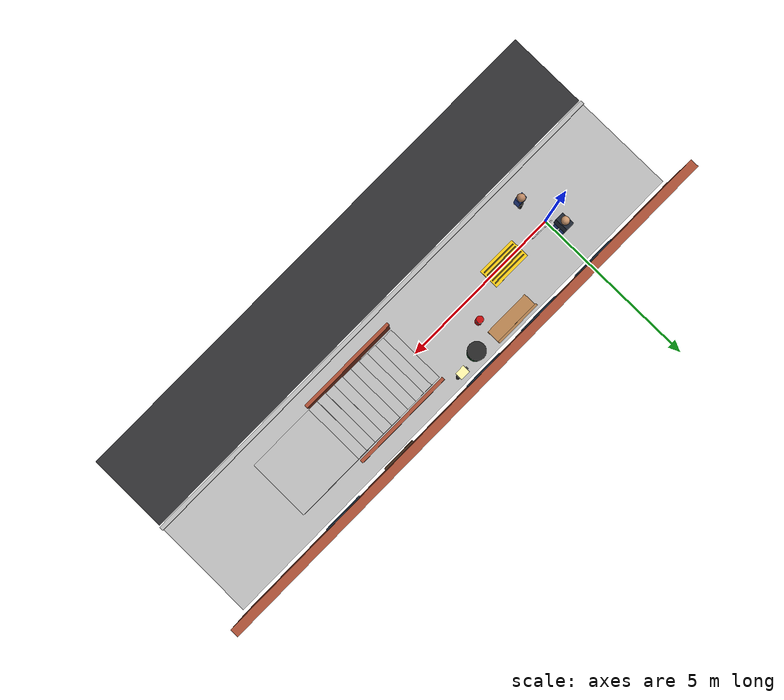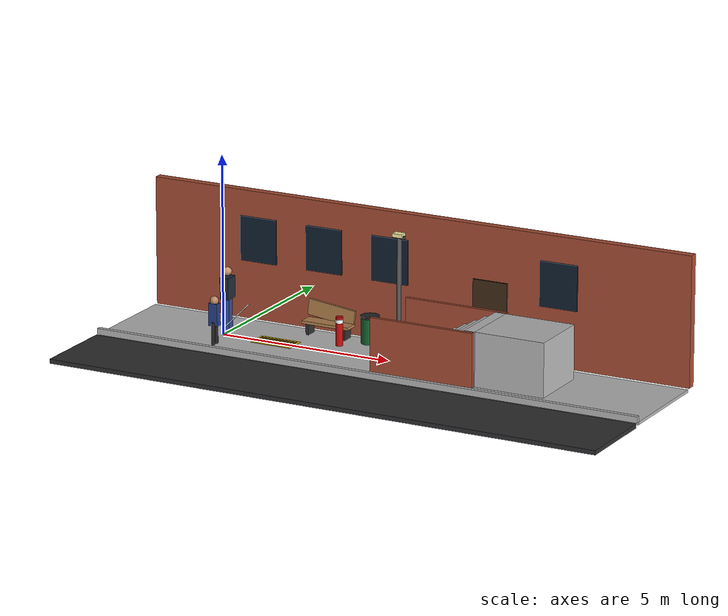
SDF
<sdf version="1.6">
 <world name="guide_dog_street_shifted">
  <scene>
   <ambient>0.20 0.19 0.18 1</ambient>
   <background>0.38 0.39 0.44 1</background>
   <shadows>true</shadows>
   <fog><color>0.38 0.39 0.44 1</color><density>0.035</density></fog>
  </scene>
  <light type="directional" name="sun">
   <pose>0 0 10 0 0 0</pose>
   <diffuse>0.62 0.55 0.42 1</diffuse>
   <specular>0.18 0.18 0.18 1</specular>
   <direction>-0.65 0.25 -0.75</direction>
  </light>
  <model name="road">
   <static>true</static>
   <pose>5 -2.85 -0.06 0 0 0</pose>
   <link name="link">
    <collision name="collision"><geometry><box><size>16 2.4 0.12</size></box></geometry></collision>
    <visual name="visual">
     <geometry><box><size>16 2.4 0.12</size></box></geometry>
     <material>
      <ambient>0.12 0.12 0.13 1</ambient>
      <diffuse>0.18 0.18 0.19 1</diffuse>
      <specular>0.05 0.05 0.05 1</specular>
     </material>
    </visual>
   </link>
  </model>
  <model name="sidewalk">
   <static>true</static>
   <pose>5 0 -0.04 0 0 0</pose>
   <link name="link">
    <collision name="collision"><geometry><box><size>16 3.0 0.08</size></box></geometry></collision>
    <visual name="visual">
     <geometry><box><size>16 3.0 0.08</size></box></geometry>
     <material>
      <script><uri>file://media/materials/scripts/gazebo.material</uri><name>Gazebo/Concrete</name></script>
     </material>
    </visual>
   </link>
  </model>
  <model name="curb">
   <static>true</static>
   <pose>5 -1.54 0.085 0 0 0</pose>
   <link name="link">
    <collision name="collision"><geometry><box><size>16 0.12 0.17</size></box></geometry></collision>
    <visual name="visual">
     <geometry><box><size>16 0.12 0.17</size></box></geometry>
     <material>
      <ambient>0.62 0.62 0.62 1</ambient>
      <diffuse>0.72 0.72 0.72 1</diffuse>
      <specular>0.15 0.15 0.15 1</specular>
     </material>
    </visual>
   </link>
  </model>
  <model name="building_wall">
   <static>true</static>
   <pose>5 1.72 1.8 0 0 0</pose>
   <link name="link">
    <collision name="collision"><geometry><box><size>16 0.24 3.6</size></box></geometry></collision>
    <visual name="visual">
     <geometry><box><size>16 0.24 3.6</size></box></geometry>
     <material>
      <script><uri>file://media/materials/scripts/gazebo.material</uri><name>Gazebo/Bricks</name></script>
     </material>
    </visual>
   </link>
  </model>
  <model name="window_0">
   <static>true</static>
   <pose>0.2 1.58 2.25 0 0 0</pose>
   <link name="link">
    <visual name="visual">
     <geometry><box><size>1.1 0.04 1.25</size></box></geometry>
     <material>
      <ambient>0.04 0.08 0.12 1</ambient>
      <diffuse>0.06 0.12 0.18 1</diffuse>
      <specular>0.8 0.8 0.8 1</specular>
     </material>
    </visual>
   </link>
  </model>
  <model name="window_1">
   <static>true</static>
   <pose>2.2 1.58 2.25 0 0 0</pose>
   <link name="link">
    <visual name="visual">
     <geometry><box><size>1.1 0.04 1.25</size></box></geometry>
     <material>
      <ambient>0.04 0.08 0.12 1</ambient>
      <diffuse>0.06 0.12 0.18 1</diffuse>
      <specular>0.8 0.8 0.8 1</specular>
     </material>
    </visual>
   </link>
  </model>
  <model name="window_2">
   <static>true</static>
   <pose>4.2 1.58 2.25 0 0 0</pose>
   <link name="link">
    <visual name="visual">
     <geometry><box><size>1.1 0.04 1.25</size></box></geometry>
     <material>
      <ambient>0.04 0.08 0.12 1</ambient>
      <diffuse>0.06 0.12 0.18 1</diffuse>
      <specular>0.8 0.8 0.8 1</specular>
     </material>
    </visual>
   </link>
  </model>
  <model name="window_3">
   <static>true</static>
   <pose>9.2 1.58 2.25 0 0 0</pose>
   <link name="link">
    <visual name="visual">
     <geometry><box><size>1.1 0.04 1.25</size></box></geometry>
     <material>
      <ambient>0.04 0.08 0.12 1</ambient>
      <diffuse>0.06 0.12 0.18 1</diffuse>
      <specular>0.8 0.8 0.8 1</specular>
     </material>
    </visual>
   </link>
  </model>
  <model name="door">
   <static>true</static>
   <pose>7.2 1.57 1.05 0 0 0</pose>
   <link name="link">
    <visual name="visual">
     <geometry><box><size>1.0 0.05 2.1</size></box></geometry>
     <material>
      <ambient>0.16 0.10 0.06 1</ambient>
      <diffuse>0.25 0.16 0.09 1</diffuse>
      <specular>0.2 0.2 0.2 1</specular>
     </material>
    </visual>
   </link>
  </model>
  <model name="tactile_paving">
   <static>true</static>
   <pose>1.6 0 0.02 0 0 0</pose>
   <link name="link">
    <visual name="base">
     <geometry><box><size>1.2 0.60 0.02</size></box></geometry>
     <material>
      <ambient>0.75 0.62 0.06 1</ambient>
      <diffuse>0.95 0.78 0.08 1</diffuse>
      <specular>0.1 0.1 0.1 1</specular>
     </material>
    </visual>
    <visual name="groove_0">
     <pose>0 -0.20 0.012 0 0 0</pose>
     <geometry><box><size>1.1 0.035 0.006</size></box></geometry>
     <material><ambient>0.25 0.22 0.05 1</ambient><diffuse>0.30 0.26 0.06 1</diffuse></material>
    </visual>
    <visual name="groove_1">
     <pose>0 -0.10 0.012 0 0 0</pose>
     <geometry><box><size>1.1 0.035 0.006</size></box></geometry>
     <material><ambient>0.25 0.22 0.05 1</ambient><diffuse>0.30 0.26 0.06 1</diffuse></material>
    </visual>
    <visual name="groove_2">
     <pose>0 0.00 0.012 0 0 0</pose>
     <geometry><box><size>1.1 0.035 0.006</size></box></geometry>
     <material><ambient>0.25 0.22 0.05 1</ambient><diffuse>0.30 0.26 0.06 1</diffuse></material>
    </visual>
    <visual name="groove_3">
     <pose>0 0.10 0.012 0 0 0</pose>
     <geometry><box><size>1.1 0.035 0.006</size></box></geometry>
     <material><ambient>0.25 0.22 0.05 1</ambient><diffuse>0.30 0.26 0.06 1</diffuse></material>
    </visual>
    <visual name="groove_4">
     <pose>0 0.20 0.012 0 0 0</pose>
     <geometry><box><size>1.1 0.035 0.006</size></box></geometry>
     <material><ambient>0.25 0.22 0.05 1</ambient><diffuse>0.30 0.26 0.06 1</diffuse></material>
    </visual>
   </link>
  </model>
  <model name="bollard">
   <static>true</static>
   <pose>3.2 0.60 0.40 0 0 0</pose>
   <link name="link">
    <visual name="body">
     <geometry><cylinder><radius>0.10</radius><length>0.80</length></cylinder></geometry>
     <material>
      <ambient>0.55 0.03 0.03 1</ambient>
      <diffuse>0.75 0.04 0.04 1</diffuse>
      <specular>0.3 0.3 0.3 1</specular>
     </material>
    </visual>
    <visual name="band">
     <pose>0 0 0.28 0 0 0</pose>
     <geometry><cylinder><radius>0.105</radius><length>0.10</length></cylinder></geometry>
     <material><ambient>0.85 0.85 0.85 1</ambient><diffuse>0.95 0.95 0.95 1</diffuse></material>
    </visual>
   </link>
  </model>
  <model name="trash_bin">
   <static>true</static>
   <pose>3.85 1.12 0.38 0 0 0</pose>
   <link name="link">
    <visual name="body">
     <geometry><cylinder><radius>0.24</radius><length>0.72</length></cylinder></geometry>
     <material>
      <ambient>0.06 0.28 0.14 1</ambient>
      <diffuse>0.08 0.38 0.18 1</diffuse>
      <specular>0.2 0.2 0.2 1</specular>
     </material>
    </visual>
    <visual name="lid">
     <pose>0 0 0.38 0 0 0</pose>
     <geometry><cylinder><radius>0.26</radius><length>0.05</length></cylinder></geometry>
     <material><ambient>0.10 0.10 0.10 1</ambient><diffuse>0.15 0.15 0.15 1</diffuse></material>
    </visual>
   </link>
  </model>
  <model name="bench">
   <static>true</static>
   <pose>2.55 1.18 0.35 0 0 0</pose>
   <link name="link">
    <visual name="seat">
     <geometry><box><size>1.4 0.42 0.08</size></box></geometry>
     <material>
      <script><uri>file://media/materials/scripts/gazebo.material</uri><name>Gazebo/Wood</name></script>
     </material>
    </visual>
    <visual name="back">
     <pose>0 0.20 0.26 0 0.12 0</pose>
     <geometry><box><size>1.4 0.07 0.45</size></box></geometry>
     <material>
      <script><uri>file://media/materials/scripts/gazebo.material</uri><name>Gazebo/Wood</name></script>
     </material>
    </visual>
    <visual name="leg_l">
     <pose>-0.55 0 -0.22 0 0 0</pose>
     <geometry><box><size>0.08 0.35 0.45</size></box></geometry>
     <material><ambient>0.12 0.12 0.12 1</ambient><diffuse>0.18 0.18 0.18 1</diffuse></material>
    </visual>
    <visual name="leg_r">
     <pose>0.55 0 -0.22 0 0 0</pose>
     <geometry><box><size>0.08 0.35 0.45</size></box></geometry>
     <material><ambient>0.12 0.12 0.12 1</ambient><diffuse>0.18 0.18 0.18 1</diffuse></material>
    </visual>
   </link>
  </model>
  <model name="lamp_post">
   <static>true</static>
   <pose>4.65 1.25 1.55 0 0 0</pose>
   <link name="link">
    <visual name="pole">
     <geometry><cylinder><radius>0.055</radius><length>3.1</length></cylinder></geometry>
     <material>
      <ambient>0.22 0.22 0.22 1</ambient>
      <diffuse>0.32 0.32 0.32 1</diffuse>
      <specular>0.5 0.5 0.5 1</specular>
     </material>
    </visual>
    <visual name="arm">
     <pose>0.0 0.0 1.50 0 0 0</pose>
     <geometry><box><size>0.35 0.08 0.08</size></box></geometry>
     <material>
      <ambient>0.22 0.22 0.22 1</ambient>
      <diffuse>0.32 0.32 0.32 1</diffuse>
      <specular>0.5 0.5 0.5 1</specular>
     </material>
    </visual>
    <visual name="lamp">
     <pose>0.0 0.0 1.55 0 0 0</pose>
     <geometry><box><size>0.28 0.22 0.10</size></box></geometry>
     <material>
      <ambient>0.95 0.90 0.60 1</ambient>
      <diffuse>1.0 0.95 0.65 1</diffuse>
      <emissive>1.0 0.9 0.5 1</emissive>
     </material>
    </visual>
   </link>
  </model>
  <model name="step_0">
   <static>true</static>
   <pose>5.15 0 0.075 0 0 0</pose>
   <link name="link">
    <collision name="collision"><geometry><box><size>0.30 1.8 0.15</size></box></geometry></collision>
    <visual name="visual">
     <geometry><box><size>0.30 1.8 0.15</size></box></geometry>
     <material>
      <script><uri>file://media/materials/scripts/gazebo.material</uri><name>Gazebo/Stone</name></script>
     </material>
    </visual>
   </link>
  </model>
  <model name="step_1">
   <static>true</static>
   <pose>5.45 0 0.150 0 0 0</pose>
   <link name="link">
    <collision name="collision"><geometry><box><size>0.30 1.8 0.30</size></box></geometry></collision>
    <visual name="visual">
     <geometry><box><size>0.30 1.8 0.30</size></box></geometry>
     <material>
      <script><uri>file://media/materials/scripts/gazebo.material</uri><name>Gazebo/Stone</name></script>
     </material>
    </visual>
   </link>
  </model>
  <model name="step_2">
   <static>true</static>
   <pose>5.75 0 0.225 0 0 0</pose>
   <link name="link">
    <collision name="collision"><geometry><box><size>0.30 1.8 0.45</size></box></geometry></collision>
    <visual name="visual">
     <geometry><box><size>0.30 1.8 0.45</size></box></geometry>
     <material>
      <script><uri>file://media/materials/scripts/gazebo.material</uri><name>Gazebo/Stone</name></script>
     </material>
    </visual>
   </link>
  </model>
  <model name="step_3">
   <static>true</static>
   <pose>6.05 0 0.300 0 0 0</pose>
   <link name="link">
    <collision name="collision"><geometry><box><size>0.30 1.8 0.60</size></box></geometry></collision>
    <visual name="visual">
     <geometry><box><size>0.30 1.8 0.60</size></box></geometry>
     <material>
      <script><uri>file://media/materials/scripts/gazebo.material</uri><name>Gazebo/Stone</name></script>
     </material>
    </visual>
   </link>
  </model>
  <model name="step_4">
   <static>true</static>
   <pose>6.35 0 0.375 0 0 0</pose>
   <link name="link">
    <collision name="collision"><geometry><box><size>0.30 1.8 0.75</size></box></geometry></collision>
    <visual name="visual">
     <geometry><box><size>0.30 1.8 0.75</size></box></geometry>
     <material>
      <script><uri>file://media/materials/scripts/gazebo.material</uri><name>Gazebo/Stone</name></script>
     </material>
    </visual>
   </link>
  </model>
  <model name="step_5">
   <static>true</static>
   <pose>6.65 0 0.450 0 0 0</pose>
   <link name="link">
    <collision name="collision"><geometry><box><size>0.30 1.8 0.90</size></box></geometry></collision>
    <visual name="visual">
     <geometry><box><size>0.30 1.8 0.90</size></box></geometry>
     <material>
      <script><uri>file://media/materials/scripts/gazebo.material</uri><name>Gazebo/Stone</name></script>
     </material>
    </visual>
   </link>
  </model>
  <model name="step_6">
   <static>true</static>
   <pose>6.95 0 0.525 0 0 0</pose>
   <link name="link">
    <collision name="collision"><geometry><box><size>0.30 1.8 1.05</size></box></geometry></collision>
    <visual name="visual">
     <geometry><box><size>0.30 1.8 1.05</size></box></geometry>
     <material>
      <script><uri>file://media/materials/scripts/gazebo.material</uri><name>Gazebo/Stone</name></script>
     </material>
    </visual>
   </link>
  </model>
  <model name="step_7">
   <static>true</static>
   <pose>7.25 0 0.600 0 0 0</pose>
   <link name="link">
    <collision name="collision"><geometry><box><size>0.30 1.8 1.20</size></box></geometry></collision>
    <visual name="visual">
     <geometry><box><size>0.30 1.8 1.20</size></box></geometry>
     <material>
      <script><uri>file://media/materials/scripts/gazebo.material</uri><name>Gazebo/Stone</name></script>
     </material>
    </visual>
   </link>
  </model>
  <model name="step_8">
   <static>true</static>
   <pose>7.55 0 0.675 0 0 0</pose>
   <link name="link">
    <collision name="collision"><geometry><box><size>0.30 1.8 1.35</size></box></geometry></collision>
    <visual name="visual">
     <geometry><box><size>0.30 1.8 1.35</size></box></geometry>
     <material>
      <script><uri>file://media/materials/scripts/gazebo.material</uri><name>Gazebo/Stone</name></script>
     </material>
    </visual>
   </link>
  </model>
  <model name="step_9">
   <static>true</static>
   <pose>7.85 0 0.750 0 0 0</pose>
   <link name="link">
    <collision name="collision"><geometry><box><size>0.30 1.8 1.50</size></box></geometry></collision>
    <visual name="visual">
     <geometry><box><size>0.30 1.8 1.50</size></box></geometry>
     <material>
      <script><uri>file://media/materials/scripts/gazebo.material</uri><name>Gazebo/Stone</name></script>
     </material>
    </visual>
   </link>
  </model>
  <model name="top_landing">
   <static>true</static>
   <pose>9.0 0 0.75 0 0 0</pose>
   <link name="link">
    <collision name="collision"><geometry><box><size>2.0 1.8 1.5</size></box></geometry></collision>
    <visual name="visual">
     <geometry><box><size>2.0 1.8 1.5</size></box></geometry>
     <material>
      <script><uri>file://media/materials/scripts/gazebo.material</uri><name>Gazebo/Concrete</name></script>
     </material>
    </visual>
   </link>
  </model>
  <model name="stair_wall_left">
   <static>true</static>
   <pose>6.5 1.0 0.75 0 0 0</pose>
   <link name="link">
    <collision name="collision"><geometry><box><size>3.0 0.10 1.5</size></box></geometry></collision>
    <visual name="visual">
     <geometry><box><size>3.0 0.10 1.5</size></box></geometry>
     <material>
      <script><uri>file://media/materials/scripts/gazebo.material</uri><name>Gazebo/Bricks</name></script>
     </material>
    </visual>
   </link>
  </model>
  <model name="stair_wall_right">
   <static>true</static>
   <pose>6.5 -1.0 0.75 0 0 0</pose>
   <link name="link">
    <collision name="collision"><geometry><box><size>3.0 0.10 1.5</size></box></geometry></collision>
    <visual name="visual">
     <geometry><box><size>3.0 0.10 1.5</size></box></geometry>
     <material>
      <script><uri>file://media/materials/scripts/gazebo.material</uri><name>Gazebo/Bricks</name></script>
     </material>
    </visual>
   </link>
  </model>
  <model name="pedestrian">
   <static>true</static>
   <pose>0.2 -0.85 0.49 0 0 0</pose>
   <link name="link">
    <visual name="head">
     <pose>0 0 0.72 0 0 0</pose>
     <geometry><sphere><radius>0.12</radius></sphere></geometry>
     <material><ambient>0.55 0.38 0.28 1</ambient><diffuse>0.72 0.52 0.38 1</diffuse></material>
    </visual>
    <visual name="torso">
     <pose>0 0 0.34 0 0 0</pose>
     <geometry><box><size>0.26 0.18 0.62</size></box></geometry>
     <material><ambient>0.10 0.18 0.38 1</ambient><diffuse>0.14 0.24 0.52 1</diffuse></material>
    </visual>
    <visual name="leg_l">
     <pose>0 -0.08 -0.18 0 0 0</pose>
     <geometry><cylinder><radius>0.055</radius><length>0.62</length></cylinder></geometry>
     <material><ambient>0.08 0.08 0.08 1</ambient><diffuse>0.12 0.12 0.12 1</diffuse></material>
    </visual>
    <visual name="leg_r">
     <pose>0 0.08 -0.18 0 0 0</pose>
     <geometry><cylinder><radius>0.055</radius><length>0.62</length></cylinder></geometry>
     <material><ambient>0.08 0.08 0.08 1</ambient><diffuse>0.12 0.12 0.12 1</diffuse></material>
    </visual>
   </link>
  </model>
  <model name="vivid_blind_handler">
   <static>false</static>
   <pose>-0.1 0.4 0.0 0 0 0</pose>
   <link name="link">
    <gravity>false</gravity>
    <inertial>
     <mass>65.0</mass>
     <inertia><ixx>10.0</ixx><ixy>0.0</ixy><ixz>0.0</ixz><iyy>10.0</iyy><iyz>0.0</iyz><izz>1.0</izz></inertia>
    </inertial>
    <visual name="head">
     <pose>0 0 1.65 0 0 0</pose>
     <geometry><sphere><radius>0.12</radius></sphere></geometry>
     <material><ambient>0.60 0.42 0.30 1</ambient><diffuse>0.78 0.58 0.42 1</diffuse></material>
    </visual>
    <visual name="torso">
     <pose>0 0 1.20 0 0 0</pose>
     <geometry><box><size>0.25 0.40 0.60</size></box></geometry>
     <material><ambient>0.08 0.10 0.14 1</ambient><diffuse>0.12 0.15 0.20 1</diffuse></material>
    </visual>
    <visual name="left_leg">
     <pose>0 0.10 0.45 0 0 0</pose>
     <geometry><cylinder><radius>0.08</radius><length>0.90</length></cylinder></geometry>
     <material><ambient>0.10 0.16 0.34 1</ambient><diffuse>0.16 0.24 0.50 1</diffuse></material>
    </visual>
    <visual name="right_leg">
     <pose>0 -0.10 0.45 0 0 0</pose>
     <geometry><cylinder><radius>0.08</radius><length>0.90</length></cylinder></geometry>
     <material><ambient>0.10 0.16 0.34 1</ambient><diffuse>0.16 0.24 0.50 1</diffuse></material>
    </visual>
    <visual name="white_cane">
     <pose>0.40 -0.30 0.50 0 0.785 0</pose>
     <geometry><cylinder><radius>0.015</radius><length>1.20</length></cylinder></geometry>
     <material><ambient>0.90 0.90 0.90 1</ambient><diffuse>1.0 1.0 1.0 1</diffuse></material>
    </visual>
   </link>
  </model>
 </world>
</sdf>
